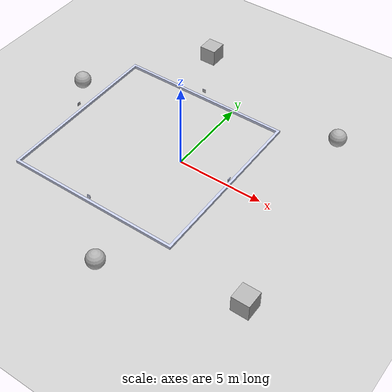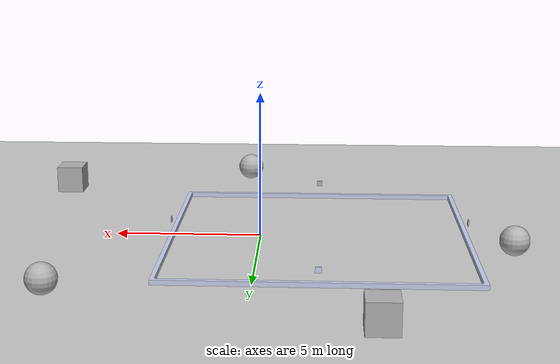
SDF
<sdf version='1.9'>
  <world name='empty'>
    <physics name='1ms' type='ignored'>
      <max_step_size>0.001</max_step_size>
      <real_time_factor>1</real_time_factor>
      <real_time_update_rate>1000</real_time_update_rate>
    </physics>
    <plugin name='gz::sim::systems::Physics' filename='ignition-gazebo-physics-system'/>
    <plugin name='gz::sim::systems::UserCommands' filename='ignition-gazebo-user-commands-system'/>
    <plugin name='gz::sim::systems::SceneBroadcaster' filename='ignition-gazebo-scene-broadcaster-system'/>
    <plugin name='gz::sim::systems::Contact' filename='ignition-gazebo-contact-system'/>
    <gravity>0 0 -9.8</gravity>
    <magnetic_field>6e-06 2.3e-05 -4.2e-05</magnetic_field>
    <atmosphere type='adiabatic'/>
    <scene>
      <ambient>0.4 0.4 0.4 1</ambient>
      <background>0.7 0.7 0.7 1</background>
      <shadows>true</shadows>
    </scene>
    <model name='ground_plane'>
      <static>true</static>
      <link name='link'>
        <collision name='collision'>
          <geometry>
            <plane>
              <normal>0 0 1</normal>
              <size>100 100</size>
            </plane>
          </geometry>
          <surface>
            <friction>
              <ode/>
            </friction>
            <bounce/>
            <contact/>
          </surface>
        </collision>
        <visual name='visual'>
          <geometry>
            <plane>
              <normal>0 0 1</normal>
              <size>100 100</size>
            </plane>
          </geometry>
          <material>
            <ambient>0.8 0.8 0.8 1</ambient>
            <diffuse>0.8 0.8 0.8 1</diffuse>
            <specular>0.8 0.8 0.8 1</specular>
          </material>
        </visual>
        <pose>0 0 0 0 -0 0</pose>
        <inertial>
          <pose>0 0 0 0 -0 0</pose>
          <mass>1</mass>
          <inertia>
            <ixx>1</ixx>
            <ixy>0</ixy>
            <ixz>0</ixz>
            <iyy>1</iyy>
            <iyz>0</iyz>
            <izz>1</izz>
          </inertia>
        </inertial>
        <enable_wind>false</enable_wind>
      </link>
      <pose>0 0 0 0 -0 0</pose>
      <self_collide>false</self_collide>
    </model>
    <model name='Luna_Arena_Tags_Baked'>
      <link name='link'>
        <visual name='visual'>
          <geometry>
            <mesh>
              <uri>file:///home/astrobotics/github/sim_platform/src/sim/models/Luna_Arena_Tags_Baked.dae</uri>
            </mesh>
          </geometry>
        </visual>
        <collision name='collision'>
          <geometry>
            <mesh>
              <uri>file:///home/astrobotics/github/sim_platform/src/sim/models/Luna_Arena_Tags_Baked.dae</uri>
            </mesh>
          </geometry>
        </collision>
        <pose>0 0 0 0 -0 0</pose>
        <inertial>
          <pose>0 0 0 0 -0 0</pose>
          <mass>1</mass>
          <inertia>
            <ixx>1</ixx>
            <ixy>0</ixy>
            <ixz>0</ixz>
            <iyy>1</iyy>
            <iyz>0</iyz>
            <izz>1</izz>
          </inertia>
        </inertial>
        <enable_wind>false</enable_wind>
      </link>
      <pose>-2.02433 -0.050323 0 0 -0 0</pose>
      <static>false</static>
      <self_collide>false</self_collide>
    </model>
    <model name='sphere'>
      <pose>6.15581 6.10226 0.5 0 -0 0</pose>
      <link name='sphere_link'>
        <inertial>
          <inertia>
            <ixx>0.10000000000000001</ixx>
            <ixy>0</ixy>
            <ixz>0</ixz>
            <iyy>0.10000000000000001</iyy>
            <iyz>0</iyz>
            <izz>0.10000000000000001</izz>
          </inertia>
          <mass>1</mass>
          <pose>0 0 0 0 -0 0</pose>
        </inertial>
        <collision name='sphere_collision'>
          <geometry>
            <sphere>
              <radius>0.5</radius>
            </sphere>
          </geometry>
          <surface>
            <friction>
              <ode/>
            </friction>
            <bounce/>
            <contact/>
          </surface>
        </collision>
        <visual name='sphere_visual'>
          <geometry>
            <sphere>
              <radius>0.5</radius>
            </sphere>
          </geometry>
          <material>
            <ambient>0.3 0.3 0.3 1</ambient>
            <diffuse>0.7 0.7 0.7 1</diffuse>
            <specular>1 1 1 1</specular>
          </material>
        </visual>
        <pose>0 0 0 0 -0 0</pose>
        <enable_wind>false</enable_wind>
      </link>
      <static>false</static>
      <self_collide>false</self_collide>
    </model>
    <model name='sphere_0'>
      <pose>0.83614 -8.05032 0.5 0 -0 0</pose>
      <link name='sphere_link'>
        <inertial>
          <inertia>
            <ixx>0.10000000000000001</ixx>
            <ixy>0</ixy>
            <ixz>0</ixz>
            <iyy>0.10000000000000001</iyy>
            <iyz>0</iyz>
            <izz>0.10000000000000001</izz>
          </inertia>
          <mass>1</mass>
          <pose>0 0 0 0 -0 0</pose>
        </inertial>
        <collision name='sphere_collision'>
          <geometry>
            <sphere>
              <radius>0.5</radius>
            </sphere>
          </geometry>
          <surface>
            <friction>
              <ode/>
            </friction>
            <bounce/>
            <contact/>
          </surface>
        </collision>
        <visual name='sphere_visual'>
          <geometry>
            <sphere>
              <radius>0.5</radius>
            </sphere>
          </geometry>
          <material>
            <ambient>0.3 0.3 0.3 1</ambient>
            <diffuse>0.7 0.7 0.7 1</diffuse>
            <specular>1 1 1 1</specular>
          </material>
        </visual>
        <pose>0 0 0 0 -0 0</pose>
        <enable_wind>false</enable_wind>
      </link>
      <static>false</static>
      <self_collide>false</self_collide>
    </model>
    <model name='sphere_1'>
      <pose>-8.44858 1.77144 0.5 0 -0 0</pose>
      <link name='sphere_link'>
        <inertial>
          <inertia>
            <ixx>0.10000000000000001</ixx>
            <ixy>0</ixy>
            <ixz>0</ixz>
            <iyy>0.10000000000000001</iyy>
            <iyz>0</iyz>
            <izz>0.10000000000000001</izz>
          </inertia>
          <mass>1</mass>
          <pose>0 0 0 0 -0 0</pose>
        </inertial>
        <collision name='sphere_collision'>
          <geometry>
            <sphere>
              <radius>0.5</radius>
            </sphere>
          </geometry>
          <surface>
            <friction>
              <ode/>
            </friction>
            <bounce/>
            <contact/>
          </surface>
        </collision>
        <visual name='sphere_visual'>
          <geometry>
            <sphere>
              <radius>0.5</radius>
            </sphere>
          </geometry>
          <material>
            <ambient>0.3 0.3 0.3 1</ambient>
            <diffuse>0.7 0.7 0.7 1</diffuse>
            <specular>1 1 1 1</specular>
          </material>
        </visual>
        <pose>0 0 0 0 -0 0</pose>
        <enable_wind>false</enable_wind>
      </link>
      <static>false</static>
      <self_collide>false</self_collide>
    </model>
    <model name='box'>
      <pose>7.9038 -5.92906 0.5 0 -0 0</pose>
      <link name='box_link'>
        <inertial>
          <inertia>
            <ixx>0.16666</ixx>
            <ixy>0</ixy>
            <ixz>0</ixz>
            <iyy>0.16666</iyy>
            <iyz>0</iyz>
            <izz>0.16666</izz>
          </inertia>
          <mass>1</mass>
          <pose>0 0 0 0 -0 0</pose>
        </inertial>
        <collision name='box_collision'>
          <geometry>
            <box>
              <size>1 1 1</size>
            </box>
          </geometry>
          <surface>
            <friction>
              <ode/>
            </friction>
            <bounce/>
            <contact/>
          </surface>
        </collision>
        <visual name='box_visual'>
          <geometry>
            <box>
              <size>1 1 1</size>
            </box>
          </geometry>
          <material>
            <ambient>0.3 0.3 0.3 1</ambient>
            <diffuse>0.7 0.7 0.7 1</diffuse>
            <specular>1 1 1 1</specular>
          </material>
        </visual>
        <pose>0 0 0 0 -0 0</pose>
        <enable_wind>false</enable_wind>
      </link>
      <static>false</static>
      <self_collide>false</self_collide>
    </model>
    <model name='box_0'>
      <pose>-3.78431 8.43953 0.5 0 -0 0</pose>
      <link name='box_link'>
        <inertial>
          <inertia>
            <ixx>0.16666</ixx>
            <ixy>0</ixy>
            <ixz>0</ixz>
            <iyy>0.16666</iyy>
            <iyz>0</iyz>
            <izz>0.16666</izz>
          </inertia>
          <mass>1</mass>
          <pose>0 0 0 0 -0 0</pose>
        </inertial>
        <collision name='box_collision'>
          <geometry>
            <box>
              <size>1 1 1</size>
            </box>
          </geometry>
          <surface>
            <friction>
              <ode/>
            </friction>
            <bounce/>
            <contact/>
          </surface>
        </collision>
        <visual name='box_visual'>
          <geometry>
            <box>
              <size>1 1 1</size>
            </box>
          </geometry>
          <material>
            <ambient>0.3 0.3 0.3 1</ambient>
            <diffuse>0.7 0.7 0.7 1</diffuse>
            <specular>1 1 1 1</specular>
          </material>
        </visual>
        <pose>0 0 0 0 -0 0</pose>
        <enable_wind>false</enable_wind>
      </link>
      <static>false</static>
      <self_collide>false</self_collide>
    </model>
    <light name='sun' type='directional'>
      <pose>0 0 10 0 -0 0</pose>
      <cast_shadows>true</cast_shadows>
      <intensity>1</intensity>
      <direction>-0.5 0.1 -0.9</direction>
      <diffuse>0.8 0.8 0.8 1</diffuse>
      <specular>0.2 0.2 0.2 1</specular>
      <attenuation>
        <range>1000</range>
        <linear>0.01</linear>
        <constant>0.90000000000000002</constant>
        <quadratic>0.001</quadratic>
      </attenuation>
      <spot>
        <inner_angle>0</inner_angle>
        <outer_angle>0</outer_angle>
        <falloff>0</falloff>
      </spot>
    </light>
  </world>
</sdf>
